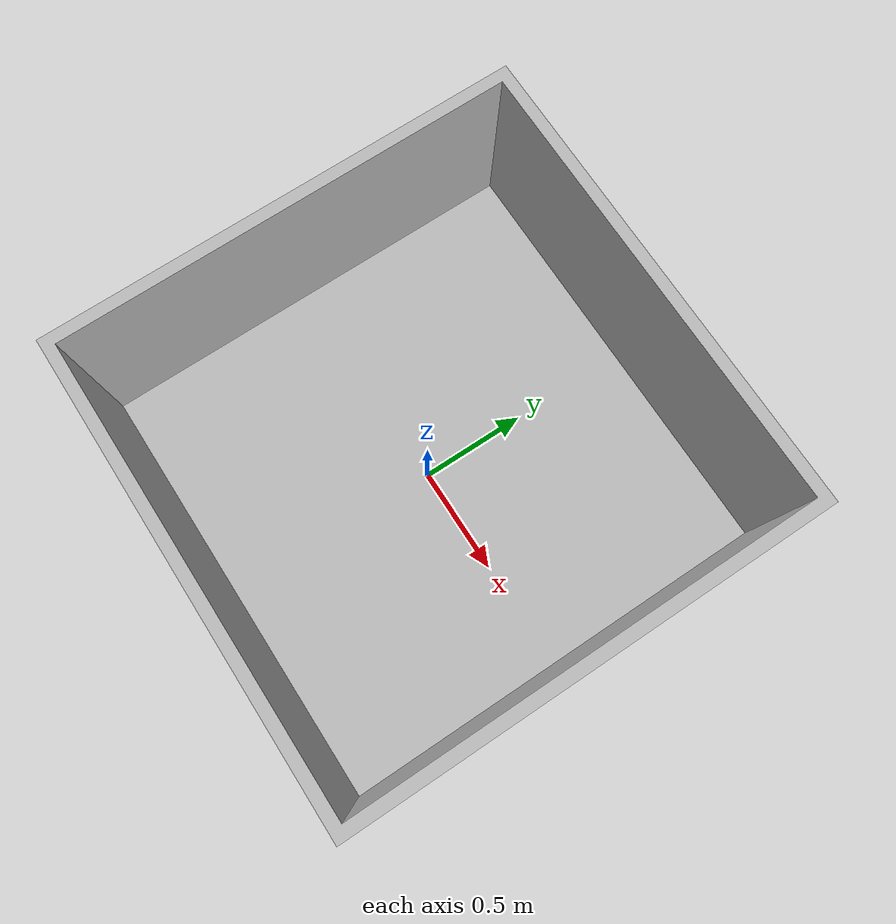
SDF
<sdf version='1.12'>
  <world name='test_world'>
    <physics name='1ms' type='ignored'>
      <max_step_size>0.001</max_step_size>
      <real_time_factor>1</real_time_factor>
      <real_time_update_rate>1000</real_time_update_rate>
    </physics>
    <plugin name='gz::sim::systems::Physics' filename='gz-sim-physics-system'/>
    <plugin name='gz::sim::systems::UserCommands' filename='gz-sim-user-commands-system'/>
    <plugin name='gz::sim::systems::SceneBroadcaster' filename='gz-sim-scene-broadcaster-system'/>
    <plugin name='gz::sim::systems::Sensors' filename='gz-sim-sensors-system'>
      <render_engine>ogre2</render_engine>
    </plugin>
    <plugin name='gz::sim::systems::Imu' filename='gz-sim-imu-system'>
      <render_engine>ogre2</render_engine>
    </plugin>
    <gravity>0 0 -9.8000000000000007</gravity>
    <magnetic_field>5.5644999999999998e-06 2.2875799999999999e-05 -4.2388400000000002e-05</magnetic_field>
    <atmosphere type='adiabatic'/>
    <scene>
      <ambient>0.400000006 0.400000006 0.400000006 1</ambient>
      <background>0.528999984 0.808000028 0.921999991 1</background>
      <shadows>true</shadows>
    </scene>
    <model name='grid'>
      <link name='link'>
        <visual name='visual'>
          <geometry>
            <mesh>
              <uri>model://grid/grid.obj</uri>
            </mesh>
          </geometry>
        </visual>
        <collision name='collision'>
          <geometry>
            <mesh>
              <uri>model://grid/grid.obj</uri>
            </mesh>
          </geometry>
        </collision>
        <pose>0 0 .1 0 0 0</pose>
        <inertial>
          <pose>0 0 0 0 0 0</pose>
          <mass>1</mass>
          <inertia>
            <ixx>1</ixx>
            <ixy>0</ixy>
            <ixz>0</ixz>
            <iyy>1</iyy>
            <iyz>0</iyz>
            <izz>1</izz>
          </inertia>
        </inertial>
        <enable_wind>false</enable_wind>
      </link>
      <pose>0 0 0 0 0 0</pose>
      <static>true</static>
      <self_collide>false</self_collide>
    </model>
    <light name='sun' type='directional'>
      <pose>0 0 10 0 0 0</pose>
      <cast_shadows>true</cast_shadows>
      <intensity>1</intensity>
      <direction>0 0 0</direction>
      <diffuse>0.800000012 0.800000012 0.800000012 1</diffuse>
      <specular>0.200000003 0.200000003 0.200000003 1</specular>
      <attenuation>
        <range>1000</range>
        <linear>0.01</linear>
        <constant>0.90000000000000002</constant>
        <quadratic>0.001</quadratic>
      </attenuation>
      <spot>
        <inner_angle>0</inner_angle>
        <outer_angle>0</outer_angle>
        <falloff>0</falloff>
      </spot>
    </light>
  </world>
</sdf>
